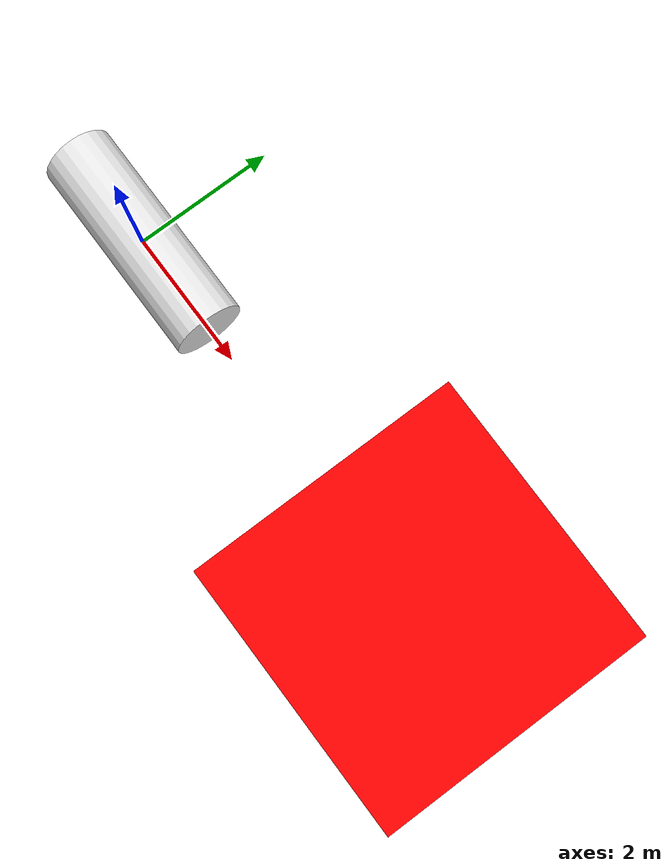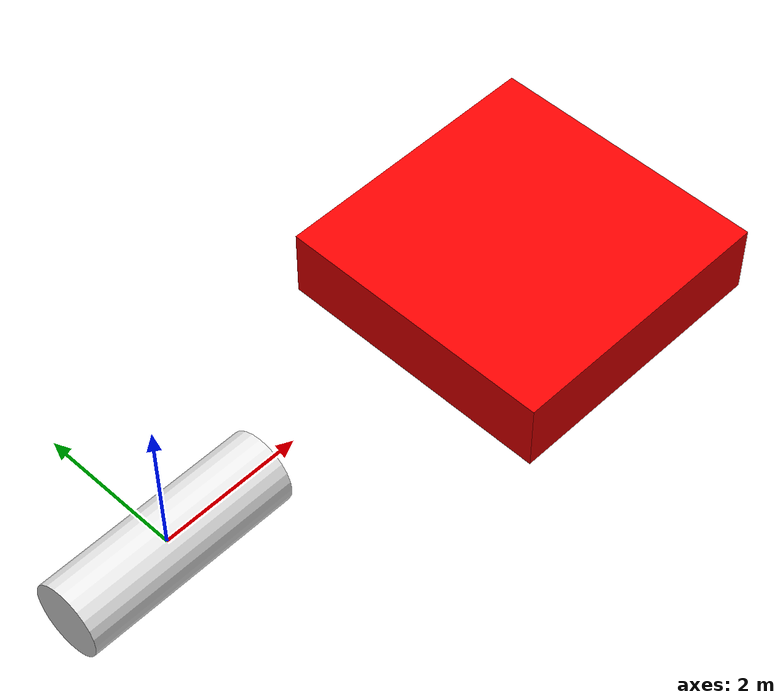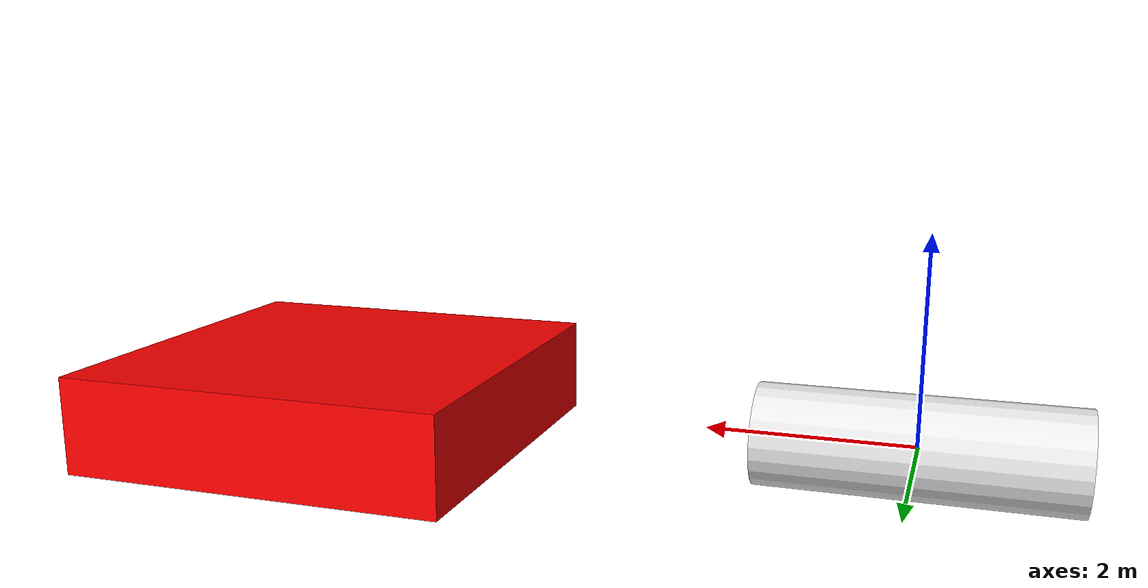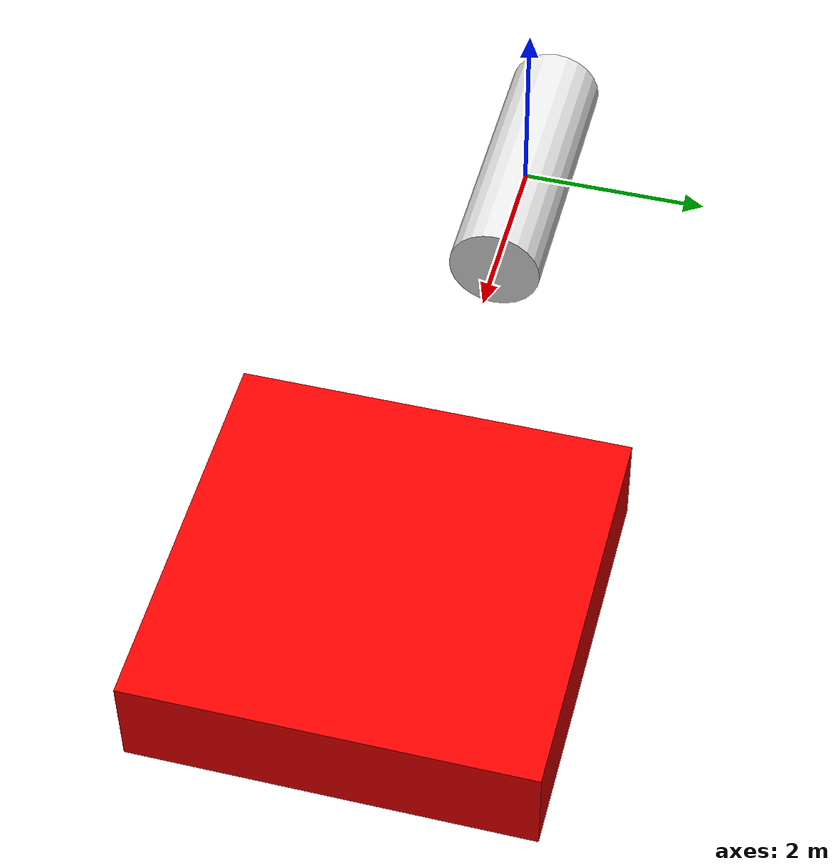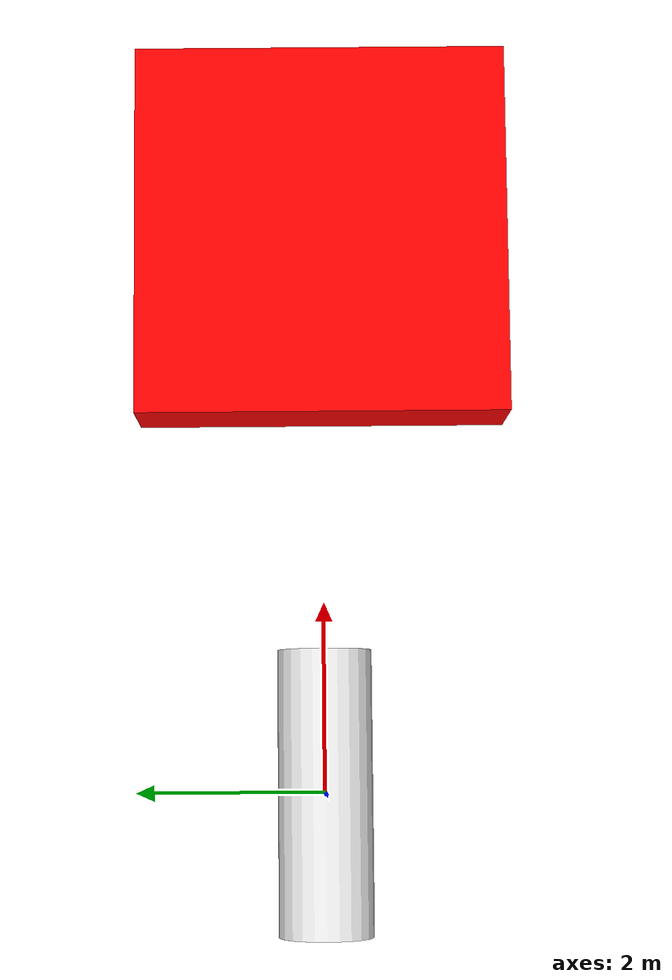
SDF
<sdf version="1.6">
  <world name="kpp_world">
    <physics name="1ms" type="ode">
        <max_step_size>0.001</max_step_size>
        <real_time_factor>1.0</real_time_factor>
    </physics>

    <plugin
        filename="ignition-gazebo-physics-system"
        name="ignition::gazebo::systems::Physics">
    </plugin>
    <plugin
        filename="ignition-gazebo-user-commands-system"
        name="ignition::gazebo::systems::UserCommands">
    </plugin>
    <plugin
        filename="ignition-gazebo-scene-broadcaster-system"
        name="ignition::gazebo::systems::SceneBroadcaster">
    </plugin>
    <plugin filename="ignition-gazebo-sensors-system"
        name="ignition::gazebo::systems::Sensors">
        <render_engine>ogre2</render_engine>
    </plugin>
    <plugin
        filename="ignition-gazebo-buoyancy-system"
        name="ignition::gazebo::systems::Buoyancy">
        <uniform_fluid_density>1000</uniform_fluid_density>
    </plugin>

    <scene>
        <ambient>0.6 0.6 0.6 1</ambient>
        <background>0.3 0.4 0.5 1</background>
    </scene>
    <light type="directional" name="sun">
        <cast_shadows>true</cast_shadows>
        <pose>0 0 10 0 0 0</pose>
        <diffuse>0.8 0.8 0.8 1</diffuse>
        <specular>0.2 0.2 0.2 1</specular>
        <direction>-0.5 0.1 -0.9</direction>
    </light>

    <model name="cylinder_body">
        <pose>0 0 0 0 1.5708 0</pose>
        <link name="base_link">
            <inertial>
            <mass>2600.0</mass>
            <inertia>
                <ixx>8398.438</ixx>   <!-- (1/12) × m × (3r² + h²) -->
                <ixy>0</ixy>
                <ixz>0</ixz>
                <iyy>490.875</iyy>   <!-- (1/12) × m × (3r² + h²) -->
                <iyz>0</iyz>
                <izz>8398.438</izz>     <!-- (1/2) × m × r² -->
            </inertia>
            </inertial>

            <collision name="collision">
            <geometry>
                <cylinder>
                <radius>0.5</radius>
                <length>3.0</length>
                </cylinder>
            </geometry>
            </collision>

            <visual name="visual">
                <geometry>
                    <cylinder>
                    <radius>0.5</radius>
                    <length>3.0</length>
                    </cylinder>
                </geometry>
                <material>
                    <ambient>0.9 0.9 0.9 1</ambient>
                    <diffuse>0.9 0.9 0.9 1</diffuse>
                </material>
            </visual>
            <sensor name='front_camera' type='camera'>
                <pose>3.1 0 0 0 0 0</pose>
                <camera>
                    <save enabled="false">
                        <path>camera_save</path>
                    </save>
                    <horizontal_fov>1.047</horizontal_fov>
                    <image>
                        <width>720</width>
                        <height>720</height>
                    </image>
                    <clip>
                        <near>0.1</near>
                        <far>100</far>
                    </clip>
                </camera>
                <always_on>1</always_on>
                <update_rate>30</update_rate>
                <visualize>true</visualize>
                <topic>camera</topic>
            </sensor>
        </link>
    </model>

    <model name="object">
    <static>true</static>
    <pose>6 0 0 0 0 0</pose>
    <link name="rect_link">
        <collision name="collision">
            <geometry>
                <box>
                    <size>4 4 1</size>
                </box>
            </geometry>
        </collision>

        <visual name="visual">
            <geometry>
                <box>
                    <size>4 4 1</size>
                </box>
            </geometry>
            <material>
                <ambient>1 0 0 1</ambient>
                <diffuse>1 0 0 1</diffuse>
            </material>
        </visual>
    </link>
</model>
  </world>
</sdf>
